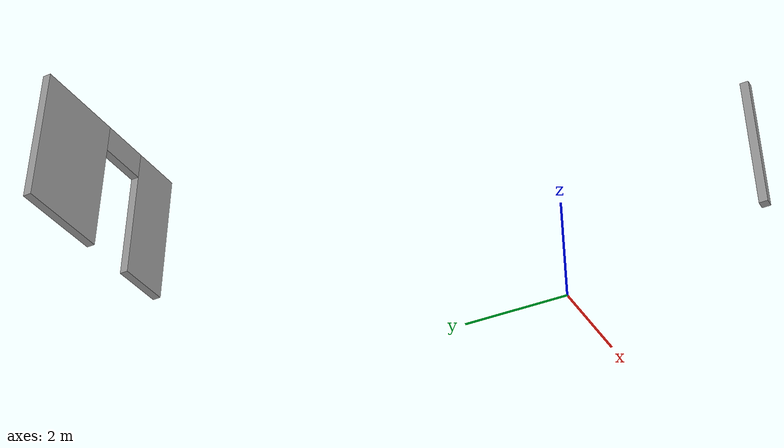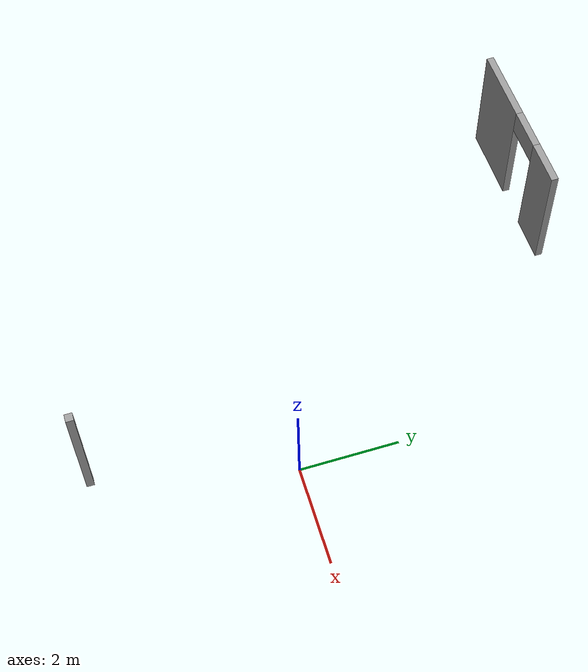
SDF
<?xml version='1.0'?>
<sdf version='1.7'>
  <model name='construction_patch'>
    <pose>-3.437 1.2265 0 0 -0 0</pose>
    <link name='Wall_0'>
      <collision name='Wall_0_Collision'>
        <geometry>
          <box>
            <size>0.16 0.15 2.5</size>
          </box>
        </geometry>
        <pose>0 0 1.25 0 -0 0</pose>
      </collision>
      <visual name='Wall_0_Visual'>
        <pose>0 0 1.25 0 -0 0</pose>
        <geometry>
          <box>
            <size>0.16 0.15 2.5</size>
          </box>
        </geometry>
        <material>
          <script>
            <uri>file://media/materials/scripts/gazebo.material</uri>
            <name>Gazebo/Grey</name>
          </script>
          <ambient>1 1 1 1</ambient>
        </material>
        <meta>
          <layer>0</layer>
        </meta>
      </visual>
      <pose>2.492 -5.1065 0 0 -0 0</pose>
    </link>
    <link name='Wall_6'>
      <pose>-1.687 5.1065 0 0 -0 0</pose>
      <visual name='Wall_6_Visual_0'>
        <pose>-0.928141 0 1.25 0 -0 0</pose>
        <geometry>
          <box>
            <size>1.64372 0.15 2.5</size>
          </box>
        </geometry>
        <material>
          <script>
            <uri>file://media/materials/scripts/gazebo.material</uri>
            <name>Gazebo/Grey</name>
          </script>
          <ambient>1 1 1 1</ambient>
        </material>
        <meta>
          <layer>0</layer>
        </meta>
      </visual>
      <collision name='Wall_6_Collision_0'>
        <geometry>
          <box>
            <size>1.64372 0.15 2.5</size>
          </box>
        </geometry>
        <pose>-0.928141 0 1.25 0 -0 0</pose>
      </collision>
      <visual name='Wall_6_Visual_1'>
        <pose>1.27186 0 1.25 0 -0 0</pose>
        <geometry>
          <box>
            <size>0.956282 0.15 2.5</size>
          </box>
        </geometry>
        <material>
          <script>
            <uri>file://media/materials/scripts/gazebo.material</uri>
            <name>Gazebo/Grey</name>
          </script>
          <ambient>1 1 1 1</ambient>
        </material>
        <meta>
          <layer>0</layer>
        </meta>
      </visual>
      <collision name='Wall_6_Collision_1'>
        <geometry>
          <box>
            <size>0.956282 0.15 2.5</size>
          </box>
        </geometry>
        <pose>1.27186 0 1.25 0 -0 0</pose>
      </collision>
      <visual name='Wall_6_Visual_2'>
        <pose>0.343718 0 2.25 0 -0 0</pose>
        <geometry>
          <box>
            <size>0.9 0.15 0.5</size>
          </box>
        </geometry>
        <material>
          <script>
            <uri>file://media/materials/scripts/gazebo.material</uri>
            <name>Gazebo/Grey</name>
          </script>
          <ambient>1 1 1 1</ambient>
        </material>
        <meta>
          <layer>0</layer>
        </meta>
      </visual>
      <collision name='Wall_6_Collision_2'>
        <geometry>
          <box>
            <size>0.9 0.15 0.5</size>
          </box>
        </geometry>
        <pose>0.343718 0 2.25 0 -0 0</pose>
      </collision>
    </link>
    <static>1</static>
  </model>
</sdf>
